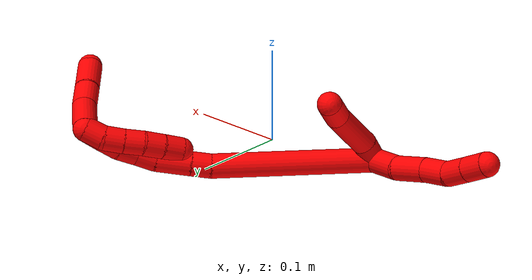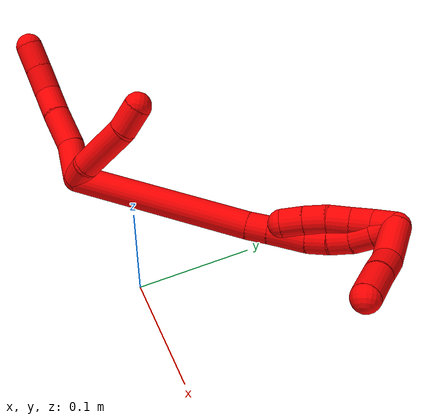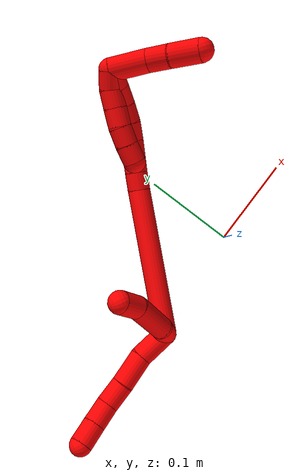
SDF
<sdf version="1.7">
 <world name="default">
  <model name="2">
   <static>0</static>
   <link name="2">
    <collision name="collision-cylinder-e_1_2_8">
     <pose>-0.00654 -0.001688 0.017232 0.097661 -0.36118 -0.017845</pose>
     <geometry><cylinder><radius>0.0125</radius><length>0.037016</length></cylinder></geometry>
     <surface>
      <friction><ode><mu>1.16</mu><mu2>1.16</mu2><slip1>0</slip1><slip2>0</slip2></ode></friction>
      <contact><ode><kp>1e+06</kp><kd>1</kd><max_vel>0</max_vel><min_depth>0.001</min_depth></ode></contact>
     </surface>
    </collision>
    <visual name="visual-cylinder-e_1_2_8">
     <pose>-0.00654 -0.001688 0.017232 0.097661 -0.36118 -0.017845</pose>
     <geometry><cylinder><radius>0.0125</radius><length>0.037016</length></cylinder></geometry>
     <material><ambient>1 0 0 1</ambient></material>
    </visual>
    <collision name="collision-cylinder-e_2_8_9">
     <pose>-0.020499 -0.009156 0.049869 0.358897 -0.42356 -0.077964</pose>
     <geometry><cylinder><radius>0.0125</radius><length>0.036099</length></cylinder></geometry>
     <surface>
      <friction><ode><mu>1.16</mu><mu2>1.16</mu2><slip1>0</slip1><slip2>0</slip2></ode></friction>
      <contact><ode><kp>1e+06</kp><kd>1</kd><max_vel>0</max_vel><min_depth>0.001</min_depth></ode></contact>
     </surface>
    </collision>
    <visual name="visual-cylinder-e_2_8_9">
     <pose>-0.020499 -0.009156 0.049869 0.358897 -0.42356 -0.077964</pose>
     <geometry><cylinder><radius>0.0125</radius><length>0.036099</length></cylinder></geometry>
     <material><ambient>1 0 0 1</ambient></material>
    </visual>
    <collision name="collision-cylinder-e_3_9_10">
     <pose>-0.033801 -0.018026 0.077118 0.255314 -0.448084 -0.058479</pose>
     <geometry><cylinder><radius>0.0125</radius><length>0.02716</length></cylinder></geometry>
     <surface>
      <friction><ode><mu>1.16</mu><mu2>1.16</mu2><slip1>0</slip1><slip2>0</slip2></ode></friction>
      <contact><ode><kp>1e+06</kp><kd>1</kd><max_vel>0</max_vel><min_depth>0.001</min_depth></ode></contact>
     </surface>
    </collision>
    <visual name="visual-cylinder-e_3_9_10">
     <pose>-0.033801 -0.018026 0.077118 0.255314 -0.448084 -0.058479</pose>
     <geometry><cylinder><radius>0.0125</radius><length>0.02716</length></cylinder></geometry>
     <material><ambient>1 0 0 1</ambient></material>
    </visual>
    <collision name="collision-cylinder-e_4_10_11">
     <pose>-0.042429 -0.027093 0.099782 0.50449 -0.218497 -0.056524</pose>
     <geometry><cylinder><radius>0.0125</radius><length>0.025327</length></cylinder></geometry>
     <surface>
      <friction><ode><mu>1.16</mu><mu2>1.16</mu2><slip1>0</slip1><slip2>0</slip2></ode></friction>
      <contact><ode><kp>1e+06</kp><kd>1</kd><max_vel>0</max_vel><min_depth>0.001</min_depth></ode></contact>
     </surface>
    </collision>
    <visual name="visual-cylinder-e_4_10_11">
     <pose>-0.042429 -0.027093 0.099782 0.50449 -0.218497 -0.056524</pose>
     <geometry><cylinder><radius>0.0125</radius><length>0.025327</length></cylinder></geometry>
     <material><ambient>1 0 0 1</ambient></material>
    </visual>
    <collision name="collision-cylinder-e_5_11_6">
     <pose>-0.047799 -0.038992 0.120941 0.520387 -0.216814 -0.057933</pose>
     <geometry><cylinder><radius>0.0125</radius><length>0.024399</length></cylinder></geometry>
     <surface>
      <friction><ode><mu>1.16</mu><mu2>1.16</mu2><slip1>0</slip1><slip2>0</slip2></ode></friction>
      <contact><ode><kp>1e+06</kp><kd>1</kd><max_vel>0</max_vel><min_depth>0.001</min_depth></ode></contact>
     </surface>
    </collision>
    <visual name="visual-cylinder-e_5_11_6">
     <pose>-0.047799 -0.038992 0.120941 0.520387 -0.216814 -0.057933</pose>
     <geometry><cylinder><radius>0.0125</radius><length>0.024399</length></cylinder></geometry>
     <material><ambient>1 0 0 1</ambient></material>
    </visual>
    <collision name="collision-cylinder-e_1_2_12">
     <pose>0.009799 -0.003827 0.002818 0.93601 1.11923 0.613282</pose>
     <geometry><cylinder><radius>0.0125</radius><length>0.021782</length></cylinder></geometry>
     <surface>
      <friction><ode><mu>1.16</mu><mu2>1.16</mu2><slip1>0</slip1><slip2>0</slip2></ode></friction>
      <contact><ode><kp>1e+06</kp><kd>1</kd><max_vel>0</max_vel><min_depth>0.001</min_depth></ode></contact>
     </surface>
    </collision>
    <visual name="visual-cylinder-e_1_2_12">
     <pose>0.009799 -0.003827 0.002818 0.93601 1.11923 0.613282</pose>
     <geometry><cylinder><radius>0.0125</radius><length>0.021782</length></cylinder></geometry>
     <material><ambient>1 0 0 1</ambient></material>
    </visual>
    <collision name="collision-cylinder-e_2_12_13">
     <pose>0.043122 -0.009657 0.016584 0.181049 1.12889 0.11482</pose>
     <geometry><cylinder><radius>0.0125</radius><length>0.052047</length></cylinder></geometry>
     <surface>
      <friction><ode><mu>1.16</mu><mu2>1.16</mu2><slip1>0</slip1><slip2>0</slip2></ode></friction>
      <contact><ode><kp>1e+06</kp><kd>1</kd><max_vel>0</max_vel><min_depth>0.001</min_depth></ode></contact>
     </surface>
    </collision>
    <visual name="visual-cylinder-e_2_12_13">
     <pose>0.043122 -0.009657 0.016584 0.181049 1.12889 0.11482</pose>
     <geometry><cylinder><radius>0.0125</radius><length>0.052047</length></cylinder></geometry>
     <material><ambient>1 0 0 1</ambient></material>
    </visual>
    <collision name="collision-cylinder-e_3_13_5">
     <pose>0.076435 -0.01359 0.035997 0.223989 0.845236 0.101069</pose>
     <geometry><cylinder><radius>0.0125</radius><length>0.026171</length></cylinder></geometry>
     <surface>
      <friction><ode><mu>1.16</mu><mu2>1.16</mu2><slip1>0</slip1><slip2>0</slip2></ode></friction>
      <contact><ode><kp>1e+06</kp><kd>1</kd><max_vel>0</max_vel><min_depth>0.001</min_depth></ode></contact>
     </surface>
    </collision>
    <visual name="visual-cylinder-e_3_13_5">
     <pose>0.076435 -0.01359 0.035997 0.223989 0.845236 0.101069</pose>
     <geometry><cylinder><radius>0.0125</radius><length>0.026171</length></cylinder></geometry>
     <material><ambient>1 0 0 1</ambient></material>
    </visual>
    <collision name="collision-cylinder-e_1_2_14">
     <pose>0.064682 0.047419 -0.0174 -1.92248 0.907807 -1.21972</pose>
     <geometry><cylinder><radius>0.0125</radius><length>0.164135</length></cylinder></geometry>
     <surface>
      <friction><ode><mu>1.16</mu><mu2>1.16</mu2><slip1>0</slip1><slip2>0</slip2></ode></friction>
      <contact><ode><kp>1e+06</kp><kd>1</kd><max_vel>0</max_vel><min_depth>0.001</min_depth></ode></contact>
     </surface>
    </collision>
    <visual name="visual-cylinder-e_1_2_14">
     <pose>0.064682 0.047419 -0.0174 -1.92248 0.907807 -1.21972</pose>
     <geometry><cylinder><radius>0.0125</radius><length>0.164135</length></cylinder></geometry>
     <material><ambient>1 0 0 1</ambient></material>
    </visual>
    <collision name="collision-cylinder-e_2_14_15">
     <pose>0.138221 0.099338 -0.036787 -1.98659 1.06378 -1.46903</pose>
     <geometry><cylinder><radius>0.0125</radius><length>0.020263</length></cylinder></geometry>
     <surface>
      <friction><ode><mu>1.16</mu><mu2>1.16</mu2><slip1>0</slip1><slip2>0</slip2></ode></friction>
      <contact><ode><kp>1e+06</kp><kd>1</kd><max_vel>0</max_vel><min_depth>0.001</min_depth></ode></contact>
     </surface>
    </collision>
    <visual name="visual-cylinder-e_2_14_15">
     <pose>0.138221 0.099338 -0.036787 -1.98659 1.06378 -1.46903</pose>
     <geometry><cylinder><radius>0.0125</radius><length>0.020263</length></cylinder></geometry>
     <material><ambient>1 0 0 1</ambient></material>
    </visual>
    <collision name="collision-cylinder-e_3_15_16">
     <pose>0.162444 0.111547 -0.042737 -2.04566 1.05721 -1.52681</pose>
     <geometry><cylinder><radius>0.0125</radius><length>0.035283</length></cylinder></geometry>
     <surface>
      <friction><ode><mu>1.16</mu><mu2>1.16</mu2><slip1>0</slip1><slip2>0</slip2></ode></friction>
      <contact><ode><kp>1e+06</kp><kd>1</kd><max_vel>0</max_vel><min_depth>0.001</min_depth></ode></contact>
     </surface>
    </collision>
    <visual name="visual-cylinder-e_3_15_16">
     <pose>0.162444 0.111547 -0.042737 -2.04566 1.05721 -1.52681</pose>
     <geometry><cylinder><radius>0.0125</radius><length>0.035283</length></cylinder></geometry>
     <material><ambient>1 0 0 1</ambient></material>
    </visual>
    <collision name="collision-cylinder-e_4_16_17">
     <pose>0.187417 0.121875 -0.047912 -2.00441 1.27898 -1.72205</pose>
     <geometry><cylinder><radius>0.0125</radius><length>0.020063</length></cylinder></geometry>
     <surface>
      <friction><ode><mu>1.16</mu><mu2>1.16</mu2><slip1>0</slip1><slip2>0</slip2></ode></friction>
      <contact><ode><kp>1e+06</kp><kd>1</kd><max_vel>0</max_vel><min_depth>0.001</min_depth></ode></contact>
     </surface>
    </collision>
    <visual name="visual-cylinder-e_4_16_17">
     <pose>0.187417 0.121875 -0.047912 -2.00441 1.27898 -1.72205</pose>
     <geometry><cylinder><radius>0.0125</radius><length>0.020063</length></cylinder></geometry>
     <material><ambient>1 0 0 1</ambient></material>
    </visual>
    <collision name="collision-cylinder-e_5_17_18">
     <pose>0.206649 0.127307 -0.048965 -1.51385 1.28596 -1.23174</pose>
     <geometry><cylinder><radius>0.0125</radius><length>0.020058</length></cylinder></geometry>
     <surface>
      <friction><ode><mu>1.16</mu><mu2>1.16</mu2><slip1>0</slip1><slip2>0</slip2></ode></friction>
      <contact><ode><kp>1e+06</kp><kd>1</kd><max_vel>0</max_vel><min_depth>0.001</min_depth></ode></contact>
     </surface>
    </collision>
    <visual name="visual-cylinder-e_5_17_18">
     <pose>0.206649 0.127307 -0.048965 -1.51385 1.28596 -1.23174</pose>
     <geometry><cylinder><radius>0.0125</radius><length>0.020058</length></cylinder></geometry>
     <material><ambient>1 0 0 1</ambient></material>
    </visual>
    <collision name="collision-cylinder-e_6_18_19">
     <pose>0.22625 0.131019 -0.047575 -0.631163 1.41929 -0.54681</pose>
     <geometry><cylinder><radius>0.0125</radius><length>0.020182</length></cylinder></geometry>
     <surface>
      <friction><ode><mu>1.16</mu><mu2>1.16</mu2><slip1>0</slip1><slip2>0</slip2></ode></friction>
      <contact><ode><kp>1e+06</kp><kd>1</kd><max_vel>0</max_vel><min_depth>0.001</min_depth></ode></contact>
     </surface>
    </collision>
    <visual name="visual-cylinder-e_6_18_19">
     <pose>0.22625 0.131019 -0.047575 -0.631163 1.41929 -0.54681</pose>
     <geometry><cylinder><radius>0.0125</radius><length>0.020182</length></cylinder></geometry>
     <material><ambient>1 0 0 1</ambient></material>
    </visual>
    <collision name="collision-cylinder-e_7_19_1">
     <pose>0.2461 0.132538 -0.044842 -0.39109 1.40759 -0.333136</pose>
     <geometry><cylinder><radius>0.0125</radius><length>0.020015</length></cylinder></geometry>
     <surface>
      <friction><ode><mu>1.16</mu><mu2>1.16</mu2><slip1>0</slip1><slip2>0</slip2></ode></friction>
      <contact><ode><kp>1e+06</kp><kd>1</kd><max_vel>0</max_vel><min_depth>0.001</min_depth></ode></contact>
     </surface>
    </collision>
    <visual name="visual-cylinder-e_7_19_1">
     <pose>0.2461 0.132538 -0.044842 -0.39109 1.40759 -0.333136</pose>
     <geometry><cylinder><radius>0.0125</radius><length>0.020015</length></cylinder></geometry>
     <material><ambient>1 0 0 1</ambient></material>
    </visual>
    <collision name="collision-cylinder-e_1_1_20">
     <pose>0.246337 0.131957 -0.040954 0.466735 -1.30054 -0.357738</pose>
     <geometry><cylinder><radius>0.0125</radius><length>0.02</length></cylinder></geometry>
     <surface>
      <friction><ode><mu>1.16</mu><mu2>1.16</mu2><slip1>0</slip1><slip2>0</slip2></ode></friction>
      <contact><ode><kp>1e+06</kp><kd>1</kd><max_vel>0</max_vel><min_depth>0.001</min_depth></ode></contact>
     </surface>
    </collision>
    <visual name="visual-cylinder-e_1_1_20">
     <pose>0.246337 0.131957 -0.040954 0.466735 -1.30054 -0.357738</pose>
     <geometry><cylinder><radius>0.0125</radius><length>0.02</length></cylinder></geometry>
     <material><ambient>1 0 0 1</ambient></material>
    </visual>
    <collision name="collision-cylinder-e_2_20_21">
     <pose>0.227631 0.126688 -0.03747 1.3067 -1.13585 -0.908695</pose>
     <geometry><cylinder><radius>0.0125</radius><length>0.02</length></cylinder></geometry>
     <surface>
      <friction><ode><mu>1.16</mu><mu2>1.16</mu2><slip1>0</slip1><slip2>0</slip2></ode></friction>
      <contact><ode><kp>1e+06</kp><kd>1</kd><max_vel>0</max_vel><min_depth>0.001</min_depth></ode></contact>
     </surface>
    </collision>
    <visual name="visual-cylinder-e_2_20_21">
     <pose>0.227631 0.126688 -0.03747 1.3067 -1.13585 -0.908695</pose>
     <geometry><cylinder><radius>0.0125</radius><length>0.02</length></cylinder></geometry>
     <material><ambient>1 0 0 1</ambient></material>
    </visual>
    <collision name="collision-cylinder-e_3_21_22">
     <pose>0.209724 0.118058 -0.035333 1.34734 -1.08395 -0.896074</pose>
     <geometry><cylinder><radius>0.0125</radius><length>0.02</length></cylinder></geometry>
     <surface>
      <friction><ode><mu>1.16</mu><mu2>1.16</mu2><slip1>0</slip1><slip2>0</slip2></ode></friction>
      <contact><ode><kp>1e+06</kp><kd>1</kd><max_vel>0</max_vel><min_depth>0.001</min_depth></ode></contact>
     </surface>
    </collision>
    <visual name="visual-cylinder-e_3_21_22">
     <pose>0.209724 0.118058 -0.035333 1.34734 -1.08395 -0.896074</pose>
     <geometry><cylinder><radius>0.0125</radius><length>0.02</length></cylinder></geometry>
     <material><ambient>1 0 0 1</ambient></material>
    </visual>
    <collision name="collision-cylinder-e_4_22_23">
     <pose>0.191715 0.109526 -0.034659 1.66185 -1.16077 -1.24582</pose>
     <geometry><cylinder><radius>0.0125</radius><length>0.02</length></cylinder></geometry>
     <surface>
      <friction><ode><mu>1.16</mu><mu2>1.16</mu2><slip1>0</slip1><slip2>0</slip2></ode></friction>
      <contact><ode><kp>1e+06</kp><kd>1</kd><max_vel>0</max_vel><min_depth>0.001</min_depth></ode></contact>
     </surface>
    </collision>
    <visual name="visual-cylinder-e_4_22_23">
     <pose>0.191715 0.109526 -0.034659 1.66185 -1.16077 -1.24582</pose>
     <geometry><cylinder><radius>0.0125</radius><length>0.02</length></cylinder></geometry>
     <material><ambient>1 0 0 1</ambient></material>
    </visual>
    <collision name="collision-cylinder-e_5_23_4">
     <pose>0.173367 0.101749 -0.036159 1.86119 -1.16213 -1.44514</pose>
     <geometry><cylinder><radius>0.0125</radius><length>0.02</length></cylinder></geometry>
     <surface>
      <friction><ode><mu>1.16</mu><mu2>1.16</mu2><slip1>0</slip1><slip2>0</slip2></ode></friction>
      <contact><ode><kp>1e+06</kp><kd>1</kd><max_vel>0</max_vel><min_depth>0.001</min_depth></ode></contact>
     </surface>
    </collision>
    <visual name="visual-cylinder-e_5_23_4">
     <pose>0.173367 0.101749 -0.036159 1.86119 -1.16213 -1.44514</pose>
     <geometry><cylinder><radius>0.0125</radius><length>0.02</length></cylinder></geometry>
     <material><ambient>1 0 0 1</ambient></material>
    </visual>
    <collision name="collision-cylinder-e_1_1_24">
     <pose>0.258351 0.123641 -0.06163 2.66184 0.114776 0.461419</pose>
     <geometry><cylinder><radius>0.0125</radius><length>0.041511</length></cylinder></geometry>
     <surface>
      <friction><ode><mu>1.16</mu><mu2>1.16</mu2><slip1>0</slip1><slip2>0</slip2></ode></friction>
      <contact><ode><kp>1e+06</kp><kd>1</kd><max_vel>0</max_vel><min_depth>0.001</min_depth></ode></contact>
     </surface>
    </collision>
    <visual name="visual-cylinder-e_1_1_24">
     <pose>0.258351 0.123641 -0.06163 2.66184 0.114776 0.461419</pose>
     <geometry><cylinder><radius>0.0125</radius><length>0.041511</length></cylinder></geometry>
     <material><ambient>1 0 0 1</ambient></material>
    </visual>
    <collision name="collision-cylinder-e_2_24_25">
     <pose>0.262897 0.105212 -0.088615 2.34377 0.172474 0.404587</pose>
     <geometry><cylinder><radius>0.0125</radius><length>0.025275</length></cylinder></geometry>
     <surface>
      <friction><ode><mu>1.16</mu><mu2>1.16</mu2><slip1>0</slip1><slip2>0</slip2></ode></friction>
      <contact><ode><kp>1e+06</kp><kd>1</kd><max_vel>0</max_vel><min_depth>0.001</min_depth></ode></contact>
     </surface>
    </collision>
    <visual name="visual-cylinder-e_2_24_25">
     <pose>0.262897 0.105212 -0.088615 2.34377 0.172474 0.404587</pose>
     <geometry><cylinder><radius>0.0125</radius><length>0.025275</length></cylinder></geometry>
     <material><ambient>1 0 0 1</ambient></material>
    </visual>
    <collision name="collision-cylinder-e_3_25_3">
     <pose>0.267275 0.085566 -0.109786 2.43118 0.133423 0.356401</pose>
     <geometry><cylinder><radius>0.0125</radius><length>0.033214</length></cylinder></geometry>
     <surface>
      <friction><ode><mu>1.16</mu><mu2>1.16</mu2><slip1>0</slip1><slip2>0</slip2></ode></friction>
      <contact><ode><kp>1e+06</kp><kd>1</kd><max_vel>0</max_vel><min_depth>0.001</min_depth></ode></contact>
     </surface>
    </collision>
    <visual name="visual-cylinder-e_3_25_3">
     <pose>0.267275 0.085566 -0.109786 2.43118 0.133423 0.356401</pose>
     <geometry><cylinder><radius>0.0125</radius><length>0.033214</length></cylinder></geometry>
     <material><ambient>1 0 0 1</ambient></material>
    </visual>
    <collision name="collision-sphere-3">
     <pose>0.269484 0.074832 -0.122263 0 -0 0</pose>
     <geometry><sphere><radius>0.0125</radius></sphere></geometry>
     <surface>
      <friction><ode><mu>1.16</mu><mu2>1.16</mu2><slip1>0</slip1><slip2>0</slip2></ode></friction>
      <contact><ode><kp>1e+06</kp><kd>1</kd><max_vel>0</max_vel><min_depth>0.001</min_depth></ode></contact>
     </surface>
    </collision>
    <visual name="visual-sphere-3">
     <pose>0.269484 0.074832 -0.122263 0 -0 0</pose>
     <geometry><sphere><radius>0.0125</radius></sphere></geometry>
     <material><ambient>1 0 0 1</ambient></material>
    </visual>
    <collision name="collision-sphere-25">
     <pose>0.265066 0.0963 -0.097308 0 -0 0</pose>
     <geometry><sphere><radius>0.0125</radius></sphere></geometry>
     <surface>
      <friction><ode><mu>1.16</mu><mu2>1.16</mu2><slip1>0</slip1><slip2>0</slip2></ode></friction>
      <contact><ode><kp>1e+06</kp><kd>1</kd><max_vel>0</max_vel><min_depth>0.001</min_depth></ode></contact>
     </surface>
    </collision>
    <visual name="visual-sphere-25">
     <pose>0.265066 0.0963 -0.097308 0 -0 0</pose>
     <geometry><sphere><radius>0.0125</radius></sphere></geometry>
     <material><ambient>1 0 0 1</ambient></material>
    </visual>
    <collision name="collision-sphere-24">
     <pose>0.260728 0.114124 -0.079921 0 -0 0</pose>
     <geometry><sphere><radius>0.0125</radius></sphere></geometry>
     <surface>
      <friction><ode><mu>1.16</mu><mu2>1.16</mu2><slip1>0</slip1><slip2>0</slip2></ode></friction>
      <contact><ode><kp>1e+06</kp><kd>1</kd><max_vel>0</max_vel><min_depth>0.001</min_depth></ode></contact>
     </surface>
    </collision>
    <visual name="visual-sphere-24">
     <pose>0.260728 0.114124 -0.079921 0 -0 0</pose>
     <geometry><sphere><radius>0.0125</radius></sphere></geometry>
     <material><ambient>1 0 0 1</ambient></material>
    </visual>
    <collision name="collision-sphere-4">
     <pose>0.164191 0.097941 -0.037297 0 -0 0</pose>
     <geometry><sphere><radius>0.0125</radius></sphere></geometry>
     <surface>
      <friction><ode><mu>1.16</mu><mu2>1.16</mu2><slip1>0</slip1><slip2>0</slip2></ode></friction>
      <contact><ode><kp>1e+06</kp><kd>1</kd><max_vel>0</max_vel><min_depth>0.001</min_depth></ode></contact>
     </surface>
    </collision>
    <visual name="visual-sphere-4">
     <pose>0.164191 0.097941 -0.037297 0 -0 0</pose>
     <geometry><sphere><radius>0.0125</radius></sphere></geometry>
     <material><ambient>1 0 0 1</ambient></material>
    </visual>
    <collision name="collision-sphere-23">
     <pose>0.182544 0.105556 -0.035022 0 -0 0</pose>
     <geometry><sphere><radius>0.0125</radius></sphere></geometry>
     <surface>
      <friction><ode><mu>1.16</mu><mu2>1.16</mu2><slip1>0</slip1><slip2>0</slip2></ode></friction>
      <contact><ode><kp>1e+06</kp><kd>1</kd><max_vel>0</max_vel><min_depth>0.001</min_depth></ode></contact>
     </surface>
    </collision>
    <visual name="visual-sphere-23">
     <pose>0.182544 0.105556 -0.035022 0 -0 0</pose>
     <geometry><sphere><radius>0.0125</radius></sphere></geometry>
     <material><ambient>1 0 0 1</ambient></material>
    </visual>
    <collision name="collision-sphere-22">
     <pose>0.200886 0.113496 -0.034297 0 -0 0</pose>
     <geometry><sphere><radius>0.0125</radius></sphere></geometry>
     <surface>
      <friction><ode><mu>1.16</mu><mu2>1.16</mu2><slip1>0</slip1><slip2>0</slip2></ode></friction>
      <contact><ode><kp>1e+06</kp><kd>1</kd><max_vel>0</max_vel><min_depth>0.001</min_depth></ode></contact>
     </surface>
    </collision>
    <visual name="visual-sphere-22">
     <pose>0.200886 0.113496 -0.034297 0 -0 0</pose>
     <geometry><sphere><radius>0.0125</radius></sphere></geometry>
     <material><ambient>1 0 0 1</ambient></material>
    </visual>
    <collision name="collision-sphere-21">
     <pose>0.218562 0.12262 -0.03637 0 -0 0</pose>
     <geometry><sphere><radius>0.0125</radius></sphere></geometry>
     <surface>
      <friction><ode><mu>1.16</mu><mu2>1.16</mu2><slip1>0</slip1><slip2>0</slip2></ode></friction>
      <contact><ode><kp>1e+06</kp><kd>1</kd><max_vel>0</max_vel><min_depth>0.001</min_depth></ode></contact>
     </surface>
    </collision>
    <visual name="visual-sphere-21">
     <pose>0.218562 0.12262 -0.03637 0 -0 0</pose>
     <geometry><sphere><radius>0.0125</radius></sphere></geometry>
     <material><ambient>1 0 0 1</ambient></material>
    </visual>
    <collision name="collision-sphere-20">
     <pose>0.2367 0.130755 -0.03857 0 -0 0</pose>
     <geometry><sphere><radius>0.0125</radius></sphere></geometry>
     <surface>
      <friction><ode><mu>1.16</mu><mu2>1.16</mu2><slip1>0</slip1><slip2>0</slip2></ode></friction>
      <contact><ode><kp>1e+06</kp><kd>1</kd><max_vel>0</max_vel><min_depth>0.001</min_depth></ode></contact>
     </surface>
    </collision>
    <visual name="visual-sphere-20">
     <pose>0.2367 0.130755 -0.03857 0 -0 0</pose>
     <geometry><sphere><radius>0.0125</radius></sphere></geometry>
     <material><ambient>1 0 0 1</ambient></material>
    </visual>
    <collision name="collision-sphere-6">
     <pose>-0.050423 -0.044916 0.131278 0 -0 0</pose>
     <geometry><sphere><radius>0.0125</radius></sphere></geometry>
     <surface>
      <friction><ode><mu>1.16</mu><mu2>1.16</mu2><slip1>0</slip1><slip2>0</slip2></ode></friction>
      <contact><ode><kp>1e+06</kp><kd>1</kd><max_vel>0</max_vel><min_depth>0.001</min_depth></ode></contact>
     </surface>
    </collision>
    <visual name="visual-sphere-6">
     <pose>-0.050423 -0.044916 0.131278 0 -0 0</pose>
     <geometry><sphere><radius>0.0125</radius></sphere></geometry>
     <material><ambient>1 0 0 1</ambient></material>
    </visual>
    <collision name="collision-sphere-11">
     <pose>-0.045174 -0.033068 0.110604 0 -0 0</pose>
     <geometry><sphere><radius>0.0125</radius></sphere></geometry>
     <surface>
      <friction><ode><mu>1.16</mu><mu2>1.16</mu2><slip1>0</slip1><slip2>0</slip2></ode></friction>
      <contact><ode><kp>1e+06</kp><kd>1</kd><max_vel>0</max_vel><min_depth>0.001</min_depth></ode></contact>
     </surface>
    </collision>
    <visual name="visual-sphere-11">
     <pose>-0.045174 -0.033068 0.110604 0 -0 0</pose>
     <geometry><sphere><radius>0.0125</radius></sphere></geometry>
     <material><ambient>1 0 0 1</ambient></material>
    </visual>
    <collision name="collision-sphere-10">
     <pose>-0.039684 -0.021117 0.08896 0 -0 0</pose>
     <geometry><sphere><radius>0.0125</radius></sphere></geometry>
     <surface>
      <friction><ode><mu>1.16</mu><mu2>1.16</mu2><slip1>0</slip1><slip2>0</slip2></ode></friction>
      <contact><ode><kp>1e+06</kp><kd>1</kd><max_vel>0</max_vel><min_depth>0.001</min_depth></ode></contact>
     </surface>
    </collision>
    <visual name="visual-sphere-10">
     <pose>-0.039684 -0.021117 0.08896 0 -0 0</pose>
     <geometry><sphere><radius>0.0125</radius></sphere></geometry>
     <material><ambient>1 0 0 1</ambient></material>
    </visual>
    <collision name="collision-sphere-9">
     <pose>-0.027918 -0.014935 0.065275 0 -0 0</pose>
     <geometry><sphere><radius>0.0125</radius></sphere></geometry>
     <surface>
      <friction><ode><mu>1.16</mu><mu2>1.16</mu2><slip1>0</slip1><slip2>0</slip2></ode></friction>
      <contact><ode><kp>1e+06</kp><kd>1</kd><max_vel>0</max_vel><min_depth>0.001</min_depth></ode></contact>
     </surface>
    </collision>
    <visual name="visual-sphere-9">
     <pose>-0.027918 -0.014935 0.065275 0 -0 0</pose>
     <geometry><sphere><radius>0.0125</radius></sphere></geometry>
     <material><ambient>1 0 0 1</ambient></material>
    </visual>
    <collision name="collision-sphere-2">
     <geometry><sphere><radius>0.0125</radius></sphere></geometry>
     <surface>
      <friction><ode><mu>1.16</mu><mu2>1.16</mu2><slip1>0</slip1><slip2>0</slip2></ode></friction>
      <contact><ode><kp>1e+06</kp><kd>1</kd><max_vel>0</max_vel><min_depth>0.001</min_depth></ode></contact>
     </surface>
    </collision>
    <visual name="visual-sphere-2">
     <geometry><sphere><radius>0.0125</radius></sphere></geometry>
     <material><ambient>1 0 0 1</ambient></material>
    </visual>
    <collision name="collision-sphere-19">
     <pose>0.236225 0.131918 -0.046345 0 -0 0</pose>
     <geometry><sphere><radius>0.0125</radius></sphere></geometry>
     <surface>
      <friction><ode><mu>1.16</mu><mu2>1.16</mu2><slip1>0</slip1><slip2>0</slip2></ode></friction>
      <contact><ode><kp>1e+06</kp><kd>1</kd><max_vel>0</max_vel><min_depth>0.001</min_depth></ode></contact>
     </surface>
    </collision>
    <visual name="visual-sphere-19">
     <pose>0.236225 0.131918 -0.046345 0 -0 0</pose>
     <geometry><sphere><radius>0.0125</radius></sphere></geometry>
     <material><ambient>1 0 0 1</ambient></material>
    </visual>
    <collision name="collision-sphere-8">
     <pose>-0.013081 -0.003376 0.034463 0 -0 0</pose>
     <geometry><sphere><radius>0.0125</radius></sphere></geometry>
     <surface>
      <friction><ode><mu>1.16</mu><mu2>1.16</mu2><slip1>0</slip1><slip2>0</slip2></ode></friction>
      <contact><ode><kp>1e+06</kp><kd>1</kd><max_vel>0</max_vel><min_depth>0.001</min_depth></ode></contact>
     </surface>
    </collision>
    <visual name="visual-sphere-8">
     <pose>-0.013081 -0.003376 0.034463 0 -0 0</pose>
     <geometry><sphere><radius>0.0125</radius></sphere></geometry>
     <material><ambient>1 0 0 1</ambient></material>
    </visual>
    <collision name="collision-sphere-12">
     <pose>0.019599 -0.007654 0.005637 0 -0 0</pose>
     <geometry><sphere><radius>0.0125</radius></sphere></geometry>
     <surface>
      <friction><ode><mu>1.16</mu><mu2>1.16</mu2><slip1>0</slip1><slip2>0</slip2></ode></friction>
      <contact><ode><kp>1e+06</kp><kd>1</kd><max_vel>0</max_vel><min_depth>0.001</min_depth></ode></contact>
     </surface>
    </collision>
    <visual name="visual-sphere-12">
     <pose>0.019599 -0.007654 0.005637 0 -0 0</pose>
     <geometry><sphere><radius>0.0125</radius></sphere></geometry>
     <material><ambient>1 0 0 1</ambient></material>
    </visual>
    <collision name="collision-sphere-13">
     <pose>0.066646 -0.011661 0.027531 0 -0 0</pose>
     <geometry><sphere><radius>0.0125</radius></sphere></geometry>
     <surface>
      <friction><ode><mu>1.16</mu><mu2>1.16</mu2><slip1>0</slip1><slip2>0</slip2></ode></friction>
      <contact><ode><kp>1e+06</kp><kd>1</kd><max_vel>0</max_vel><min_depth>0.001</min_depth></ode></contact>
     </surface>
    </collision>
    <visual name="visual-sphere-13">
     <pose>0.066646 -0.011661 0.027531 0 -0 0</pose>
     <geometry><sphere><radius>0.0125</radius></sphere></geometry>
     <material><ambient>1 0 0 1</ambient></material>
    </visual>
    <collision name="collision-sphere-5">
     <pose>0.086225 -0.015519 0.044464 0 -0 0</pose>
     <geometry><sphere><radius>0.0125</radius></sphere></geometry>
     <surface>
      <friction><ode><mu>1.16</mu><mu2>1.16</mu2><slip1>0</slip1><slip2>0</slip2></ode></friction>
      <contact><ode><kp>1e+06</kp><kd>1</kd><max_vel>0</max_vel><min_depth>0.001</min_depth></ode></contact>
     </surface>
    </collision>
    <visual name="visual-sphere-5">
     <pose>0.086225 -0.015519 0.044464 0 -0 0</pose>
     <geometry><sphere><radius>0.0125</radius></sphere></geometry>
     <material><ambient>1 0 0 1</ambient></material>
    </visual>
    <collision name="collision-sphere-14">
     <pose>0.129364 0.094838 -0.0348 0 -0 0</pose>
     <geometry><sphere><radius>0.0125</radius></sphere></geometry>
     <surface>
      <friction><ode><mu>1.16</mu><mu2>1.16</mu2><slip1>0</slip1><slip2>0</slip2></ode></friction>
      <contact><ode><kp>1e+06</kp><kd>1</kd><max_vel>0</max_vel><min_depth>0.001</min_depth></ode></contact>
     </surface>
    </collision>
    <visual name="visual-sphere-14">
     <pose>0.129364 0.094838 -0.0348 0 -0 0</pose>
     <geometry><sphere><radius>0.0125</radius></sphere></geometry>
     <material><ambient>1 0 0 1</ambient></material>
    </visual>
    <collision name="collision-sphere-15">
     <pose>0.147078 0.103839 -0.038774 0 -0 0</pose>
     <geometry><sphere><radius>0.0125</radius></sphere></geometry>
     <surface>
      <friction><ode><mu>1.16</mu><mu2>1.16</mu2><slip1>0</slip1><slip2>0</slip2></ode></friction>
      <contact><ode><kp>1e+06</kp><kd>1</kd><max_vel>0</max_vel><min_depth>0.001</min_depth></ode></contact>
     </surface>
    </collision>
    <visual name="visual-sphere-15">
     <pose>0.147078 0.103839 -0.038774 0 -0 0</pose>
     <geometry><sphere><radius>0.0125</radius></sphere></geometry>
     <material><ambient>1 0 0 1</ambient></material>
    </visual>
    <collision name="collision-sphere-16">
     <pose>0.177809 0.119256 -0.0467 0 -0 0</pose>
     <geometry><sphere><radius>0.0125</radius></sphere></geometry>
     <surface>
      <friction><ode><mu>1.16</mu><mu2>1.16</mu2><slip1>0</slip1><slip2>0</slip2></ode></friction>
      <contact><ode><kp>1e+06</kp><kd>1</kd><max_vel>0</max_vel><min_depth>0.001</min_depth></ode></contact>
     </surface>
    </collision>
    <visual name="visual-sphere-16">
     <pose>0.177809 0.119256 -0.0467 0 -0 0</pose>
     <geometry><sphere><radius>0.0125</radius></sphere></geometry>
     <material><ambient>1 0 0 1</ambient></material>
    </visual>
    <collision name="collision-sphere-17">
     <pose>0.197024 0.124493 -0.049125 0 -0 0</pose>
     <geometry><sphere><radius>0.0125</radius></sphere></geometry>
     <surface>
      <friction><ode><mu>1.16</mu><mu2>1.16</mu2><slip1>0</slip1><slip2>0</slip2></ode></friction>
      <contact><ode><kp>1e+06</kp><kd>1</kd><max_vel>0</max_vel><min_depth>0.001</min_depth></ode></contact>
     </surface>
    </collision>
    <visual name="visual-sphere-17">
     <pose>0.197024 0.124493 -0.049125 0 -0 0</pose>
     <geometry><sphere><radius>0.0125</radius></sphere></geometry>
     <material><ambient>1 0 0 1</ambient></material>
    </visual>
    <collision name="collision-sphere-18">
     <pose>0.216274 0.130121 -0.048804 0 -0 0</pose>
     <geometry><sphere><radius>0.0125</radius></sphere></geometry>
     <surface>
      <friction><ode><mu>1.16</mu><mu2>1.16</mu2><slip1>0</slip1><slip2>0</slip2></ode></friction>
      <contact><ode><kp>1e+06</kp><kd>1</kd><max_vel>0</max_vel><min_depth>0.001</min_depth></ode></contact>
     </surface>
    </collision>
    <visual name="visual-sphere-18">
     <pose>0.216274 0.130121 -0.048804 0 -0 0</pose>
     <geometry><sphere><radius>0.0125</radius></sphere></geometry>
     <material><ambient>1 0 0 1</ambient></material>
    </visual>
    <collision name="collision-sphere-1">
     <pose>0.255974 0.133158 -0.043338 0 -0 0</pose>
     <geometry><sphere><radius>0.0125</radius></sphere></geometry>
     <surface>
      <friction><ode><mu>1.16</mu><mu2>1.16</mu2><slip1>0</slip1><slip2>0</slip2></ode></friction>
      <contact><ode><kp>1e+06</kp><kd>1</kd><max_vel>0</max_vel><min_depth>0.001</min_depth></ode></contact>
     </surface>
    </collision>
    <visual name="visual-sphere-1">
     <pose>0.255974 0.133158 -0.043338 0 -0 0</pose>
     <geometry><sphere><radius>0.0125</radius></sphere></geometry>
     <material><ambient>1 0 0 1</ambient></material>
    </visual>
    <inertial>
     <pose>0.112114 0.057279 -0.012226 0 -0 0</pose>
     <mass>0.75</mass>
     <inertia>
      <ixx>-8.1e-05</ixx>
      <ixy>0</ixy>
      <ixz>0</ixz>
      <iyy>3.9e-05</iyy>
      <iyz>0</iyz>
      <izz>-0.00051</izz>
     </inertia>
    </inertial>
   </link>
   <pose>-0.126867 -0.013046 0.011485 -1.19391 -0.66291 0.817605</pose>
  </model>
 </world>
</sdf>
